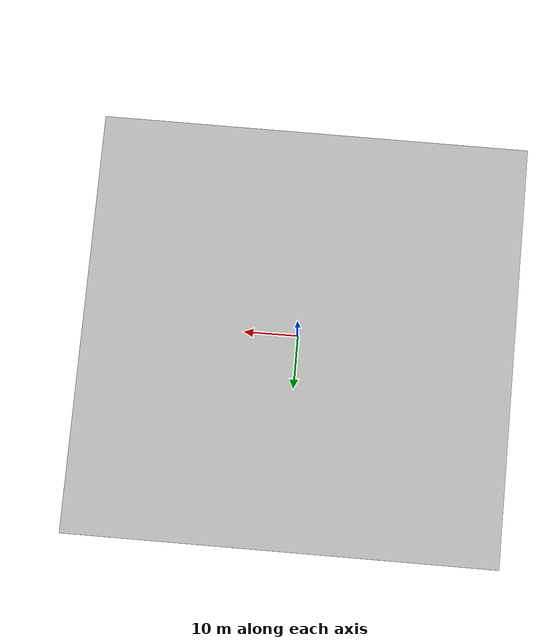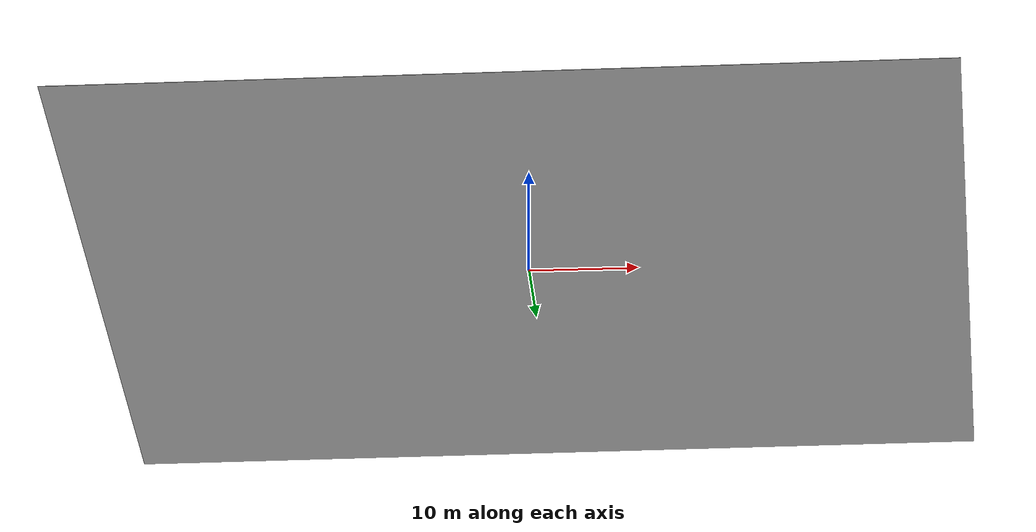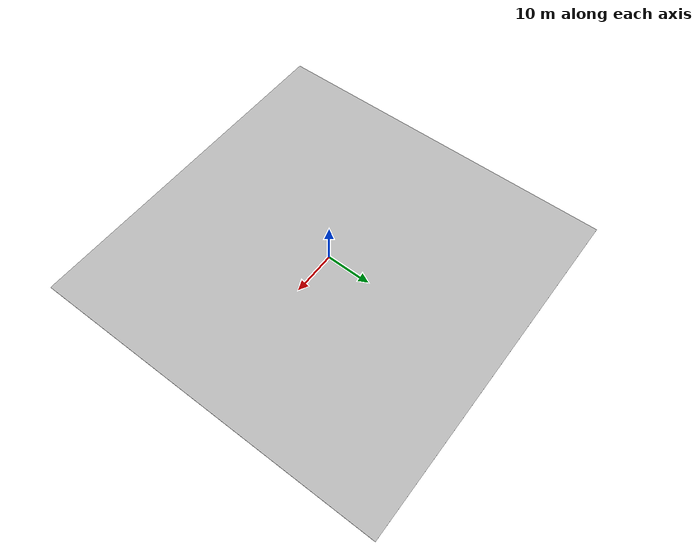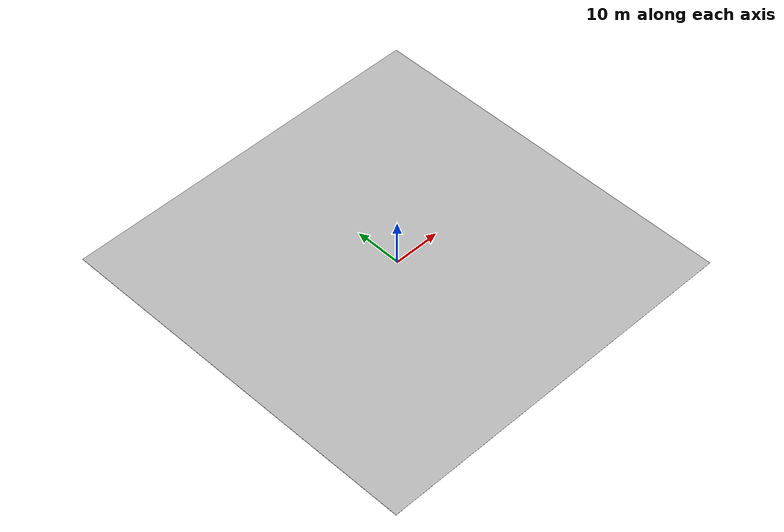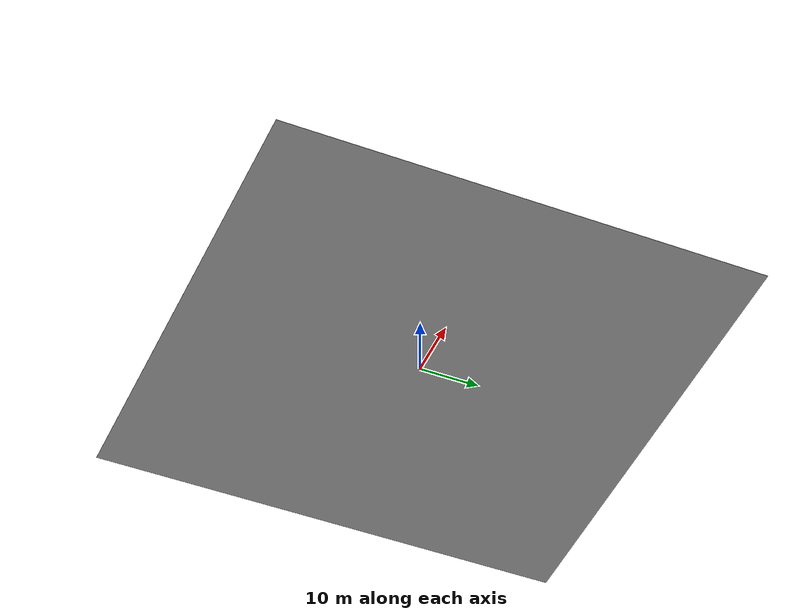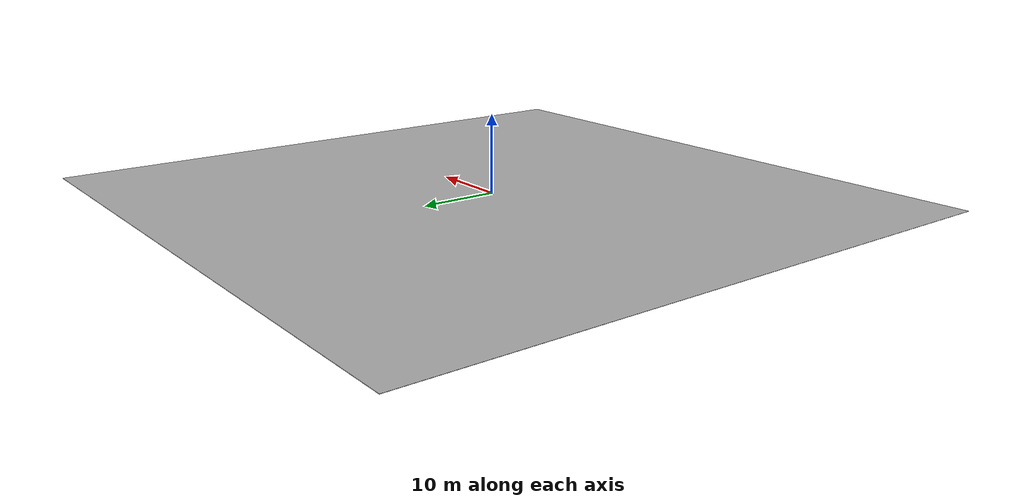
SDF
<?xml version="1.0" ?>
<sdf version="1.4">
  <model name="brick_plane">
    <static>true</static>
    <link name="link">
      <collision name="collision">
        <geometry>
          <plane>
            <normal>0 0 1</normal>
            <size>100 100</size>
          </plane>
        </geometry>
        <surface>
          <friction>
            <ode>
              <mu>100</mu>
              <mu2>50</mu2>
            </ode>
          </friction>
        </surface>
      </collision>
      <visual name="visual">
        <cast_shadows>false</cast_shadows>
        <pose>0 0 -.04 0 0 0</pose>
        <geometry>
          <mesh>
            <uri>model://brick_plane/meshes/BrickRoad.dae</uri>
          </mesh>
        </geometry>
      </visual>
    </link>
  </model>
</sdf>
